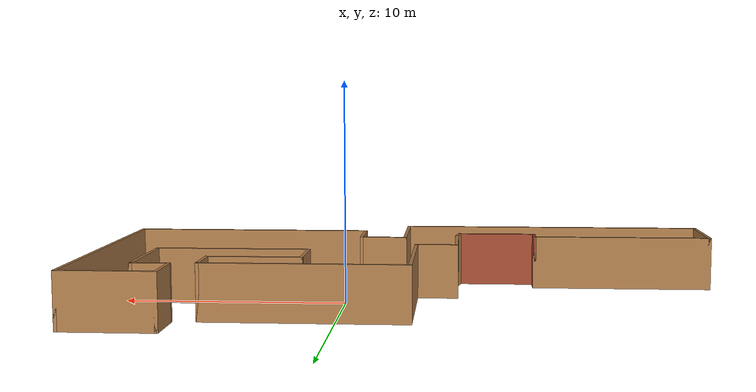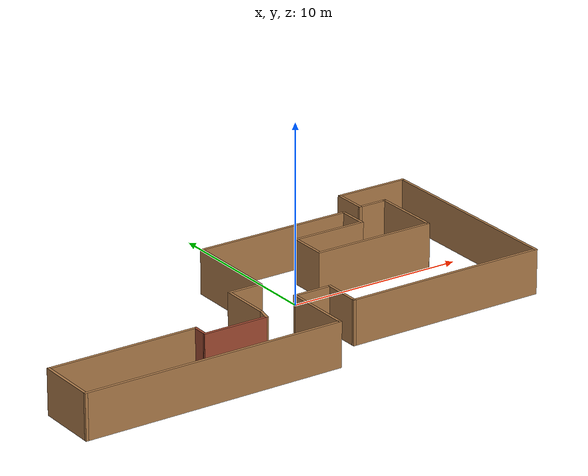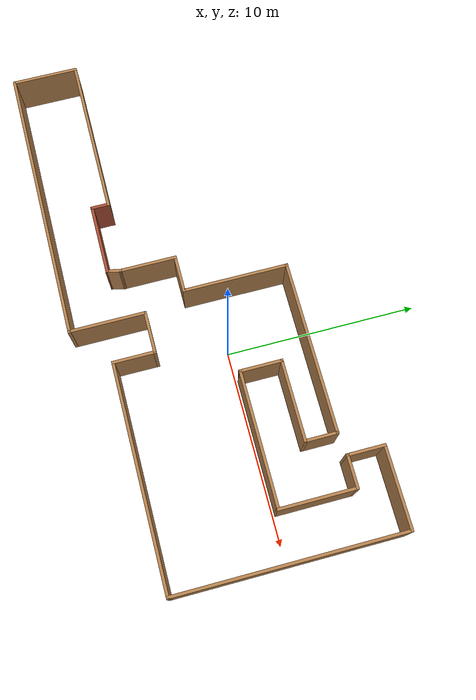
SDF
<?xml version='1.0'?>
<sdf version='1.6'>
  <model name='my_world'>
    <pose frame=''>-3.045 -0.785 0 0 -0 0</pose>
    <link name='Wall_0'>
      <collision name='Wall_0_Collision'>
        <geometry>
          <box>
            <size>3 0.15 2.5</size>
          </box>
        </geometry>
        <pose frame=''>0 0 1.25 0 -0 0</pose>
      </collision>
      <visual name='Wall_0_Visual'>
        <pose frame=''>0 0 1.25 0 -0 0</pose>
        <geometry>
          <box>
            <size>3 0.15 2.5</size>
          </box>
        </geometry>
        <material>
          <script>
            <uri>file://media/materials/scripts/gazebo.material</uri>
            <name>Gazebo/Wood</name>
          </script>
          <ambient>1 1 1 1</ambient>
        </material>
        <meta>
          <layer>0</layer>
        </meta>
      </visual>
      <pose frame=''>-1.925 -2.1 0 0 -0 1.5708</pose>
    </link>
    <link name='Wall_1'>
      <collision name='Wall_1_Collision'>
        <geometry>
          <box>
            <size>2 0.15 2.5</size>
          </box>
        </geometry>
        <pose frame=''>0 0 1.25 0 -0 0</pose>
      </collision>
      <visual name='Wall_1_Visual'>
        <pose frame=''>0 0 1.25 0 -0 0</pose>
        <geometry>
          <box>
            <size>2 0.15 2.5</size>
          </box>
        </geometry>
        <material>
          <script>
            <uri>file://media/materials/scripts/gazebo.material</uri>
            <name>Gazebo/Wood</name>
          </script>
          <ambient>1 1 1 1</ambient>
        </material>
        <meta>
          <layer>0</layer>
        </meta>
      </visual>
      <pose frame=''>-1 -0.675 0 0 -0 0</pose>
    </link>
    <link name='Wall_10'>
      <collision name='Wall_10_Collision'>
        <geometry>
          <box>
            <size>2 0.15 2.5</size>
          </box>
        </geometry>
        <pose frame=''>0 0 1.25 0 -0 0</pose>
      </collision>
      <visual name='Wall_10_Visual'>
        <pose frame=''>0 0 1.25 0 -0 0</pose>
        <geometry>
          <box>
            <size>2 0.15 2.5</size>
          </box>
        </geometry>
        <material>
          <script>
            <uri>file://media/materials/scripts/gazebo.material</uri>
            <name>Gazebo/Wood</name>
          </script>
          <ambient>1 1 1 1</ambient>
        </material>
        <meta>
          <layer>0</layer>
        </meta>
      </visual>
      <pose frame=''>9.925 5.75 0 0 -0 1.5708</pose>
    </link>
    <link name='Wall_11'>
      <collision name='Wall_11_Collision'>
        <geometry>
          <box>
            <size>4.25 0.15 2.5</size>
          </box>
        </geometry>
        <pose frame=''>0 0 1.25 0 -0 0</pose>
      </collision>
      <visual name='Wall_11_Visual'>
        <pose frame=''>0 0 1.25 0 -0 0</pose>
        <geometry>
          <box>
            <size>4.25 0.15 2.5</size>
          </box>
        </geometry>
        <material>
          <script>
            <uri>file://media/materials/scripts/gazebo.material</uri>
            <name>Gazebo/Wood</name>
          </script>
          <ambient>1 1 1 1</ambient>
        </material>
        <meta>
          <layer>0</layer>
        </meta>
      </visual>
      <pose frame=''>11.975 6.675 0 0 -0 0</pose>
    </link>
    <link name='Wall_12'>
      <collision name='Wall_12_Collision'>
        <geometry>
          <box>
            <size>11.75 0.15 2.5</size>
          </box>
        </geometry>
        <pose frame=''>0 0 1.25 0 -0 0</pose>
      </collision>
      <visual name='Wall_12_Visual'>
        <pose frame=''>0 0 1.25 0 -0 0</pose>
        <geometry>
          <box>
            <size>11.75 0.15 2.5</size>
          </box>
        </geometry>
        <material>
          <script>
            <uri>file://media/materials/scripts/gazebo.material</uri>
            <name>Gazebo/Wood</name>
          </script>
          <ambient>0.996078 0.47451 0.0196078 1</ambient>
        </material>
        <meta>
          <layer>0</layer>
        </meta>
      </visual>
      <pose frame=''>14.025 0.875 0 0 -0 -1.5708</pose>
    </link>
    <link name='Wall_13'>
      <collision name='Wall_13_Collision'>
        <geometry>
          <box>
            <size>11.5 0.15 2.5</size>
          </box>
        </geometry>
        <pose frame=''>0 0 1.25 0 -0 0</pose>
      </collision>
      <visual name='Wall_13_Visual'>
        <pose frame=''>0 0 1.25 0 -0 0</pose>
        <geometry>
          <box>
            <size>11.5 0.15 2.5</size>
          </box>
        </geometry>
        <material>
          <script>
            <uri>file://media/materials/scripts/gazebo.material</uri>
            <name>Gazebo/Wood</name>
          </script>
          <ambient>0.996078 0.47451 0.0196078 1</ambient>
        </material>
        <meta>
          <layer>0</layer>
        </meta>
      </visual>
      <pose frame=''>8.35 -4.925 0 0 -0 3.14159</pose>
    </link>
    <link name='Wall_14'>
      <collision name='Wall_14_Collision'>
        <geometry>
          <box>
            <size>2.25 0.15 2.5</size>
          </box>
        </geometry>
        <pose frame=''>0 0 1.25 0 -0 0</pose>
      </collision>
      <visual name='Wall_14_Visual'>
        <pose frame=''>0 0 1.25 0 -0 0</pose>
        <geometry>
          <box>
            <size>2.25 0.15 2.5</size>
          </box>
        </geometry>
        <material>
          <script>
            <uri>file://media/materials/scripts/gazebo.material</uri>
            <name>Gazebo/Wood</name>
          </script>
          <ambient>1 1 1 1</ambient>
        </material>
        <meta>
          <layer>0</layer>
        </meta>
      </visual>
      <pose frame=''>2.675 -3.875 0 0 -0 1.5708</pose>
    </link>
    <link name='Wall_15'>
      <collision name='Wall_15_Collision'>
        <geometry>
          <box>
            <size>2.25 0.15 2.5</size>
          </box>
        </geometry>
        <pose frame=''>0 0 1.25 0 -0 0</pose>
      </collision>
      <visual name='Wall_15_Visual'>
        <pose frame=''>0 0 1.25 0 -0 0</pose>
        <geometry>
          <box>
            <size>2.25 0.15 2.5</size>
          </box>
        </geometry>
        <material>
          <script>
            <uri>file://media/materials/scripts/gazebo.material</uri>
            <name>Gazebo/Wood</name>
          </script>
          <ambient>1 1 1 1</ambient>
        </material>
        <meta>
          <layer>0</layer>
        </meta>
      </visual>
      <pose frame=''>1.625 -2.825 0 0 -0 3.14159</pose>
    </link>
    <link name='Wall_16'>
      <collision name='Wall_16_Collision'>
        <geometry>
          <box>
            <size>4 0.15 2.5</size>
          </box>
        </geometry>
        <pose frame=''>0 0 1.25 0 -0 0</pose>
      </collision>
      <visual name='Wall_16_Visual'>
        <pose frame=''>0 0 1.25 0 -0 0</pose>
        <geometry>
          <box>
            <size>4 0.15 2.5</size>
          </box>
        </geometry>
        <material>
          <script>
            <uri>file://media/materials/scripts/gazebo.material</uri>
            <name>Gazebo/Wood</name>
          </script>
          <ambient>1 1 1 1</ambient>
        </material>
        <meta>
          <layer>0</layer>
        </meta>
      </visual>
      <pose frame=''>0.575 -4.75 0 0 -0 -1.5708</pose>
    </link>
    <link name='Wall_17'>
      <collision name='Wall_17_Collision'>
        <geometry>
          <box>
            <size>14.75 0.15 2.5</size>
          </box>
        </geometry>
        <pose frame=''>0 0 1.25 0 -0 0</pose>
      </collision>
      <visual name='Wall_17_Visual'>
        <pose frame=''>0 0 1.25 0 -0 0</pose>
        <geometry>
          <box>
            <size>14.75 0.15 2.5</size>
          </box>
        </geometry>
        <material>
          <script>
            <uri>file://media/materials/scripts/gazebo.material</uri>
            <name>Gazebo/Wood</name>
          </script>
          <ambient>1 1 1 1</ambient>
        </material>
        <meta>
          <layer>0</layer>
        </meta>
      </visual>
      <pose frame=''>-6.725 -6.675 0 0 -0 3.14159</pose>
    </link>
    <link name='Wall_18'>
      <collision name='Wall_18_Collision'>
        <geometry>
          <box>
            <size>3.5 0.15 2.5</size>
          </box>
        </geometry>
        <pose frame=''>0 0 1.25 0 -0 0</pose>
      </collision>
      <visual name='Wall_18_Visual'>
        <pose frame=''>0 0 1.25 0 -0 0</pose>
        <geometry>
          <box>
            <size>3.5 0.15 2.5</size>
          </box>
        </geometry>
        <material>
          <script>
            <uri>file://media/materials/scripts/gazebo.material</uri>
            <name>Gazebo/Wood</name>
          </script>
          <ambient>1 1 1 1</ambient>
        </material>
        <meta>
          <layer>0</layer>
        </meta>
      </visual>
      <pose frame=''>-14.025 -5 0 0 -0 1.5708</pose>
    </link>
    <link name='Wall_19'>
      <collision name='Wall_19_Collision'>
        <geometry>
          <box>
            <size>8.5 0.15 2.5</size>
          </box>
        </geometry>
        <pose frame=''>0 0 1.25 0 -0 0</pose>
      </collision>
      <visual name='Wall_19_Visual'>
        <pose frame=''>0 0 1.25 0 -0 0</pose>
        <geometry>
          <box>
            <size>8.5 0.15 2.5</size>
          </box>
        </geometry>
        <material>
          <script>
            <uri>file://media/materials/scripts/gazebo.material</uri>
            <name>Gazebo/Wood</name>
          </script>
          <ambient>1 1 1 1</ambient>
        </material>
        <meta>
          <layer>0</layer>
        </meta>
      </visual>
      <pose frame=''>-9.85 -3.325 0 0 -0 0</pose>
    </link>
    <link name='Wall_2'>
      <collision name='Wall_2_Collision'>
        <geometry>
          <box>
            <size>5.5 0.15 2.5</size>
          </box>
        </geometry>
        <pose frame=''>0 0 1.25 0 -0 0</pose>
      </collision>
      <visual name='Wall_2_Visual'>
        <pose frame=''>0 0 1.25 0 -0 0</pose>
        <geometry>
          <box>
            <size>5.5 0.15 2.5</size>
          </box>
        </geometry>
        <material>
          <script>
            <uri>file://media/materials/scripts/gazebo.material</uri>
            <name>Gazebo/Wood</name>
          </script>
          <ambient>1 1 1 1</ambient>
        </material>
        <meta>
          <layer>0</layer>
        </meta>
      </visual>
      <pose frame=''>-0.075 2 0 0 -0 1.5708</pose>
    </link>
    <link name='Wall_20'>
      <collision name='Wall_20_Collision'>
        <geometry>
          <box>
            <size>1 0.15 2.5</size>
          </box>
        </geometry>
        <pose frame=''>0 0 1.25 0 -0 0</pose>
      </collision>
      <visual name='Wall_20_Visual'>
        <pose frame=''>0 0 1.25 0 -0 0</pose>
        <geometry>
          <box>
            <size>1 0.15 2.5</size>
          </box>
        </geometry>
        <material>
          <script>
            <uri>file://media/materials/scripts/gazebo.material</uri>
            <name>Gazebo/Bricks</name>
          </script>
          <ambient>1 1 1 1</ambient>
        </material>
        <meta>
          <layer>0</layer>
        </meta>
      </visual>
      <pose frame=''>-5.675 -3.75 0 0 -0 -1.5708</pose>
    </link>
    <link name='Wall_21'>
      <collision name='Wall_21_Collision'>
        <geometry>
          <box>
            <size>3.75 0.15 2.5</size>
          </box>
        </geometry>
        <pose frame=''>0 0 1.25 0 -0 0</pose>
      </collision>
      <visual name='Wall_21_Visual'>
        <pose frame=''>0 0 1.25 0 -0 0</pose>
        <geometry>
          <box>
            <size>3.75 0.15 2.5</size>
          </box>
        </geometry>
        <material>
          <script>
            <uri>file://media/materials/scripts/gazebo.material</uri>
            <name>Gazebo/Bricks</name>
          </script>
          <ambient>1 1 1 1</ambient>
        </material>
        <meta>
          <layer>0</layer>
        </meta>
      </visual>
      <pose frame=''>-3.875 -4.175 0 0 -0 0</pose>
    </link>
    <link name='Wall_22'>
      <collision name='Wall_22_Collision'>
        <geometry>
          <box>
            <size>0.817083 0.15 2.5</size>
          </box>
        </geometry>
        <pose frame=''>0 0 1.25 0 -0 0</pose>
      </collision>
      <visual name='Wall_22_Visual'>
        <pose frame=''>0 0 1.25 0 -0 0</pose>
        <geometry>
          <box>
            <size>0.817083 0.15 2.5</size>
          </box>
        </geometry>
        <material>
          <script>
            <uri>file://media/materials/scripts/gazebo.material</uri>
            <name>Gazebo/Wood</name>
          </script>
          <ambient>1 1 1 1</ambient>
        </material>
        <meta>
          <layer>0</layer>
        </meta>
      </visual>
      <pose frame=''>-2 -3.85 0 0 -0 1.344</pose>
    </link>
    <link name='Wall_3'>
      <collision name='Wall_3_Collision'>
        <geometry>
          <box>
            <size>9 0.15 2.5</size>
          </box>
        </geometry>
        <pose frame=''>0 0 1.25 0 -0 0</pose>
      </collision>
      <visual name='Wall_3_Visual'>
        <pose frame=''>0 0 1.25 0 -0 0</pose>
        <geometry>
          <box>
            <size>9 0.15 2.5</size>
          </box>
        </geometry>
        <material>
          <script>
            <uri>file://media/materials/scripts/gazebo.material</uri>
            <name>Gazebo/Wood</name>
          </script>
          <ambient>1 1 1 1</ambient>
        </material>
        <meta>
          <layer>0</layer>
        </meta>
      </visual>
      <pose frame=''>4.35 4.675 0 0 -0 0</pose>
    </link>
    <link name='Wall_4'>
      <collision name='Wall_4_Collision'>
        <geometry>
          <box>
            <size>1.75 0.15 2.5</size>
          </box>
        </geometry>
        <pose frame=''>0 0 1.25 0 -0 0</pose>
      </collision>
      <visual name='Wall_4_Visual'>
        <pose frame=''>0 0 1.25 0 -0 0</pose>
        <geometry>
          <box>
            <size>1.75 0.15 2.5</size>
          </box>
        </geometry>
        <material>
          <script>
            <uri>file://media/materials/scripts/gazebo.material</uri>
            <name>Gazebo/Wood</name>
          </script>
          <ambient>1 1 1 1</ambient>
        </material>
        <meta>
          <layer>0</layer>
        </meta>
      </visual>
      <pose frame=''>8.775 3.875 0 0 -0 -1.5708</pose>
    </link>
    <link name='Wall_5'>
      <collision name='Wall_5_Collision'>
        <geometry>
          <box>
            <size>4.25 0.15 2.5</size>
          </box>
        </geometry>
        <pose frame=''>0 0 1.25 0 -0 0</pose>
      </collision>
      <visual name='Wall_5_Visual'>
        <pose frame=''>0 0 1.25 0 -0 0</pose>
        <geometry>
          <box>
            <size>4.25 0.15 2.5</size>
          </box>
        </geometry>
        <material>
          <script>
            <uri>file://media/materials/scripts/gazebo.material</uri>
            <name>Gazebo/Wood</name>
          </script>
          <ambient>1 1 1 1</ambient>
        </material>
        <meta>
          <layer>0</layer>
        </meta>
      </visual>
      <pose frame=''>6.725 3.075 0 0 -0 3.14159</pose>
    </link>
    <link name='Wall_6'>
      <collision name='Wall_6_Collision'>
        <geometry>
          <box>
            <size>2.25 0.15 2.5</size>
          </box>
        </geometry>
        <pose frame=''>0 0 1.25 0 -0 0</pose>
      </collision>
      <visual name='Wall_6_Visual'>
        <pose frame=''>0 0 1.25 0 -0 0</pose>
        <geometry>
          <box>
            <size>2.25 0.15 2.5</size>
          </box>
        </geometry>
        <material>
          <script>
            <uri>file://media/materials/scripts/gazebo.material</uri>
            <name>Gazebo/Wood</name>
          </script>
          <ambient>1 1 1 1</ambient>
        </material>
        <meta>
          <layer>0</layer>
        </meta>
      </visual>
      <pose frame=''>4.675 2.025 0 0 -0 -1.5708</pose>
    </link>
    <link name='Wall_7'>
      <collision name='Wall_7_Collision'>
        <geometry>
          <box>
            <size>7 0.15 2.5</size>
          </box>
        </geometry>
        <pose frame=''>0 0 1.25 0 -0 0</pose>
      </collision>
      <visual name='Wall_7_Visual'>
        <pose frame=''>0 0 1.25 0 -0 0</pose>
        <geometry>
          <box>
            <size>7 0.15 2.5</size>
          </box>
        </geometry>
        <material>
          <script>
            <uri>file://media/materials/scripts/gazebo.material</uri>
            <name>Gazebo/Wood</name>
          </script>
          <ambient>1 1 1 1</ambient>
        </material>
        <meta>
          <layer>0</layer>
        </meta>
      </visual>
      <pose frame=''>8.1 0.975 0 0 -0 0</pose>
    </link>
    <link name='Wall_8'>
      <collision name='Wall_8_Collision'>
        <geometry>
          <box>
            <size>4 0.15 2.5</size>
          </box>
        </geometry>
        <pose frame=''>0 0 1.25 0 -0 0</pose>
      </collision>
      <visual name='Wall_8_Visual'>
        <pose frame=''>0 0 1.25 0 -0 0</pose>
        <geometry>
          <box>
            <size>4 0.15 2.5</size>
          </box>
        </geometry>
        <material>
          <script>
            <uri>file://media/materials/scripts/gazebo.material</uri>
            <name>Gazebo/Wood</name>
          </script>
          <ambient>1 1 1 1</ambient>
        </material>
        <meta>
          <layer>0</layer>
        </meta>
      </visual>
      <pose frame=''>11.525 2.9 0 0 -0 1.5708</pose>
    </link>
    <link name='Wall_9'>
      <collision name='Wall_9_Collision'>
        <geometry>
          <box>
            <size>1.75 0.15 2.5</size>
          </box>
        </geometry>
        <pose frame=''>0 0 1.25 0 -0 0</pose>
      </collision>
      <visual name='Wall_9_Visual'>
        <pose frame=''>0 0 1.25 0 -0 0</pose>
        <geometry>
          <box>
            <size>1.75 0.15 2.5</size>
          </box>
        </geometry>
        <material>
          <script>
            <uri>file://media/materials/scripts/gazebo.material</uri>
            <name>Gazebo/Wood</name>
          </script>
          <ambient>1 1 1 1</ambient>
        </material>
        <meta>
          <layer>0</layer>
        </meta>
      </visual>
      <pose frame=''>10.725 4.825 0 0 -0 3.14159</pose>
    </link>
    <static>1</static>
  </model>
</sdf>
